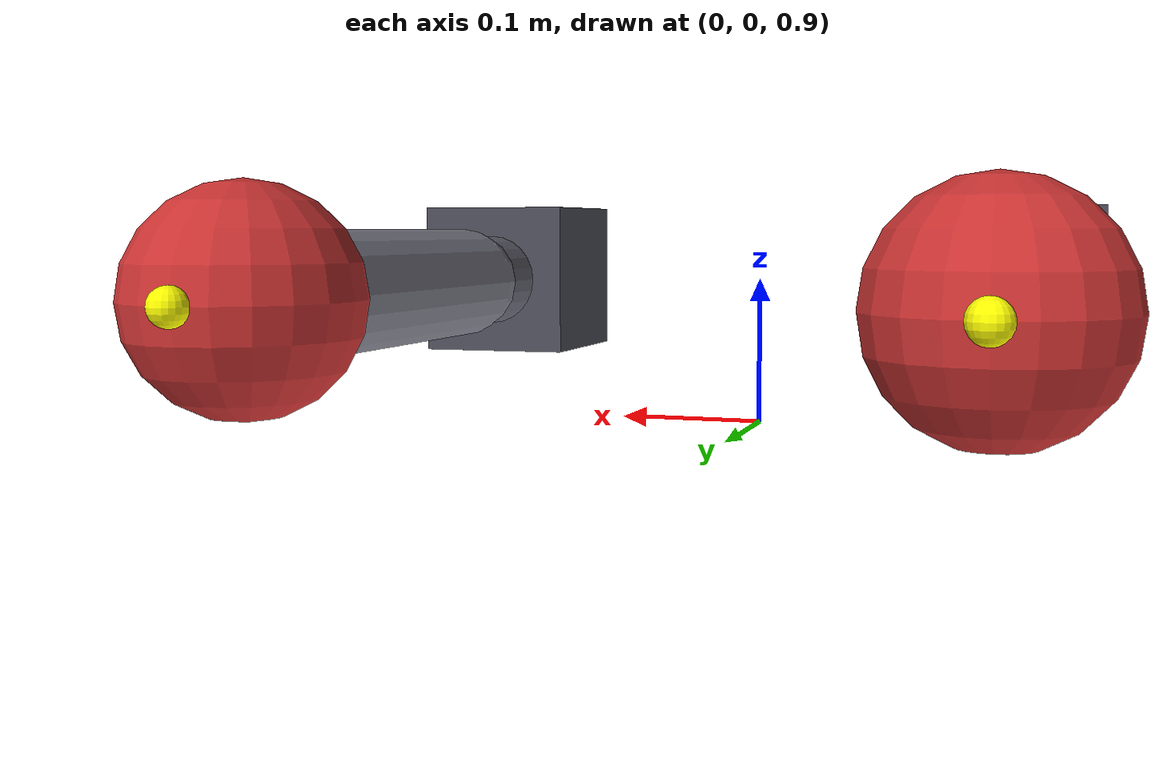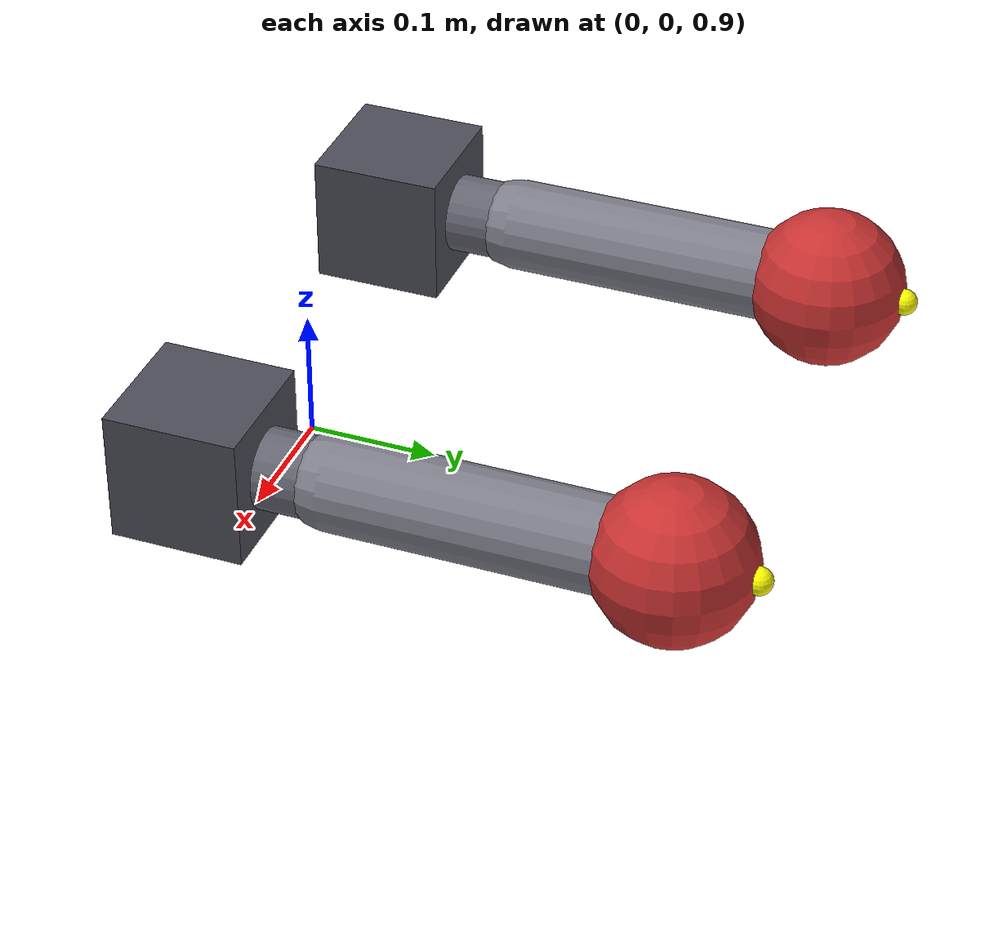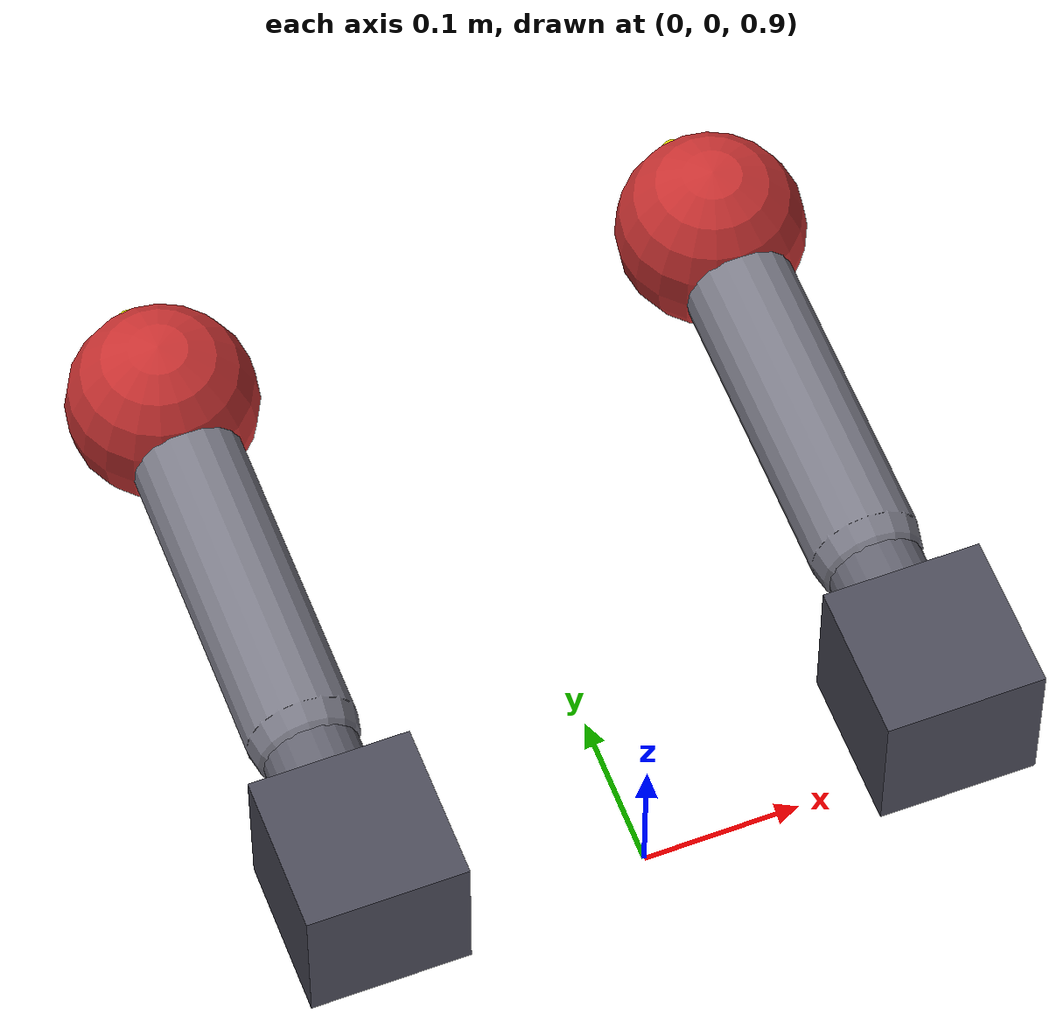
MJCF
<mujoco model="striker_arms">
  <default>
    <default class="motor_stage">
      <joint type="slide" axis="0 1 0" range="0 0.8" damping="2.0"/>
      <geom type="cylinder" size="0.03" rgba="0.40 0.40 0.45 1" mass="1.5"/>
    </default>
    <default class="spring_stage">
      <joint type="slide" axis="0 1 0" range="-0.05 0.05" stiffness="3000" damping="20"
             springref="0"/>
      <geom type="capsule" size="0.035" rgba="0.50 0.50 0.55 1" mass="1.0"/>
    </default>
    <default class="glove">
      <geom type="sphere" size="0.06" rgba="0.80 0.20 0.20 1" mass="0.4"
            solref="0.02 1" solimp="0.9 0.95 0.001"/>
    </default>
  </default>

  <worldbody>
    <!-- arm0 (left) -->
    <body name="arm0_base" pos="-0.18 0 1.0">
      <geom name="arm0_mount" type="box" size="0.05 0.05 0.05" rgba="0.30 0.30 0.35 1" mass="2"/>
      <body name="arm0_motor" pos="0 0 0">
        <joint name="arm0_motor" class="motor_stage"/>
        <geom name="arm0_motor_geom" class="motor_stage" fromto="0 0 0 0 0.10 0"/>
        <body name="arm0_forearm" pos="0 0.10 0">
          <joint name="arm0_spring" class="spring_stage"/>
          <geom name="arm0_forearm_geom" class="spring_stage" fromto="0 0 0 0 0.25 0"/>
          <body name="arm0_glove" pos="0 0.25 0">
            <geom name="arm0_glove_geom" class="glove"/>
            <site name="arm0_glove_tip" pos="0 0.06 0" size="0.01" rgba="1 1 0 1"/>
          </body>
        </body>
      </body>
    </body>

    <!-- arm1 (right) -->
    <body name="arm1_base" pos="0.18 0 1.0">
      <geom name="arm1_mount" type="box" size="0.05 0.05 0.05" rgba="0.30 0.30 0.35 1" mass="2"/>
      <body name="arm1_motor" pos="0 0 0">
        <joint name="arm1_motor" class="motor_stage"/>
        <geom name="arm1_motor_geom" class="motor_stage" fromto="0 0 0 0 0.10 0"/>
        <body name="arm1_forearm" pos="0 0.10 0">
          <joint name="arm1_spring" class="spring_stage"/>
          <geom name="arm1_forearm_geom" class="spring_stage" fromto="0 0 0 0 0.25 0"/>
          <body name="arm1_glove" pos="0 0.25 0">
            <geom name="arm1_glove_geom" class="glove"/>
            <site name="arm1_glove_tip" pos="0 0.06 0" size="0.01" rgba="1 1 0 1"/>
          </body>
        </body>
      </body>
    </body>
  </worldbody>

  <actuator>
    <position name="arm0_motor_act" joint="arm0_motor" kp="500" ctrlrange="0 0.8"/>
    <position name="arm1_motor_act" joint="arm1_motor" kp="500" ctrlrange="0 0.8"/>
  </actuator>

  <sensor>
    <jointpos name="arm0_spring_pos" joint="arm0_spring"/>
    <jointpos name="arm1_spring_pos" joint="arm1_spring"/>
  </sensor>
</mujoco>
